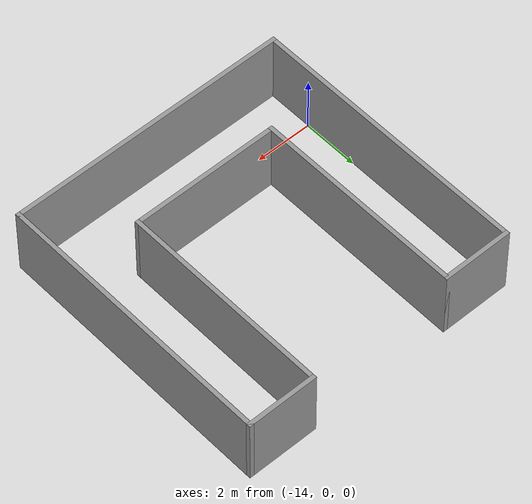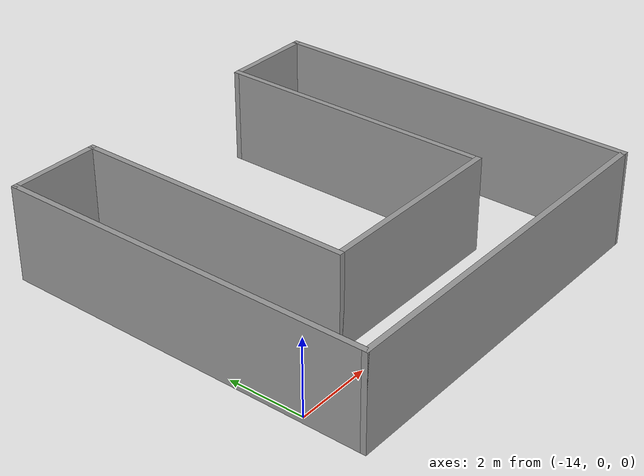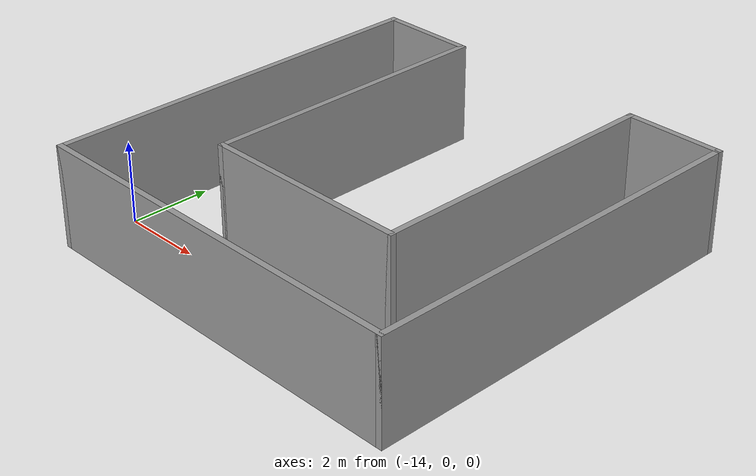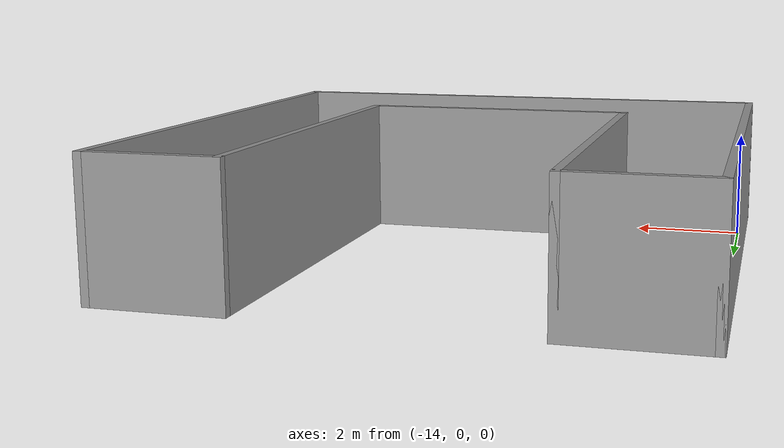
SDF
<?xml version='1.0'?>
<sdf version='1.7'>
  <model name='mybuilding'>
    <pose>-7.0795 3.279 0 0 -0 0</pose>
    <link name='Wall_0'>
      <collision name='Wall_0_Collision'>
        <geometry>
          <box>
            <size>10 0.15 2.5</size>
          </box>
        </geometry>
        <pose>0 0 1.25 0 -0 0</pose>
      </collision>
      <visual name='Wall_0_Visual'>
        <pose>0 0 1.25 0 -0 0</pose>
        <geometry>
          <box>
            <size>10 0.15 2.5</size>
          </box>
        </geometry>
        <material>
          <script>
            <uri>file://media/materials/scripts/gazebo.material</uri>
            <name>Gazebo/Grey</name>
          </script>
          <ambient>1 1 1 1</ambient>
        </material>
        <meta>
          <layer>0</layer>
        </meta>
      </visual>
      <pose>-7.0045 0 0 0 -0 1.5708</pose>
    </link>
    <link name='Wall_10'>
      <collision name='Wall_10_Collision'>
        <geometry>
          <box>
            <size>7.5 0.15 2.5</size>
          </box>
        </geometry>
        <pose>0 0 1.25 0 -0 0</pose>
      </collision>
      <visual name='Wall_10_Visual'>
        <pose>0 0 1.25 0 -0 0</pose>
        <geometry>
          <box>
            <size>7.5 0.15 2.5</size>
          </box>
        </geometry>
        <material>
          <script>
            <uri>file://media/materials/scripts/gazebo.material</uri>
            <name>Gazebo/Grey</name>
          </script>
          <ambient>1 1 1 1</ambient>
        </material>
        <meta>
          <layer>0</layer>
        </meta>
      </visual>
      <pose>-4.6545 1.25 0 0 -0 -1.5708</pose>
    </link>
    <link name='Wall_13'>
      <collision name='Wall_13_Collision'>
        <geometry>
          <box>
            <size>7.5 0.15 2.5</size>
          </box>
        </geometry>
        <pose>0 0 1.25 0 -0 0</pose>
      </collision>
      <visual name='Wall_13_Visual'>
        <pose>0 0 1.25 0 -0 0</pose>
        <geometry>
          <box>
            <size>7.5 0.15 2.5</size>
          </box>
        </geometry>
        <material>
          <script>
            <uri>file://media/materials/scripts/gazebo.material</uri>
            <name>Gazebo/Grey</name>
          </script>
          <ambient>1 1 1 1</ambient>
        </material>
        <meta>
          <layer>0</layer>
        </meta>
      </visual>
      <pose>0.4955 1.25 0 0 -0 -1.5708</pose>
    </link>
    <link name='Wall_15'>
      <collision name='Wall_15_Collision'>
        <geometry>
          <box>
            <size>5.3 0.15 2.5</size>
          </box>
        </geometry>
        <pose>0 0 1.25 0 -0 0</pose>
      </collision>
      <visual name='Wall_15_Visual'>
        <pose>0 0 1.25 0 -0 0</pose>
        <geometry>
          <box>
            <size>5.3 0.15 2.5</size>
          </box>
        </geometry>
        <material>
          <script>
            <uri>file://media/materials/scripts/gazebo.material</uri>
            <name>Gazebo/Grey</name>
          </script>
          <ambient>1 1 1 1</ambient>
        </material>
        <meta>
          <layer>0</layer>
        </meta>
      </visual>
      <pose>-2.0795 -2.425 0 0 -0 0</pose>
    </link>
    <link name='Wall_2'>
      <collision name='Wall_2_Collision'>
        <geometry>
          <box>
            <size>2.5 0.15 2.5</size>
          </box>
        </geometry>
        <pose>0 0 1.25 0 -0 0</pose>
      </collision>
      <visual name='Wall_2_Visual'>
        <pose>0 0 1.25 0 -0 0</pose>
        <geometry>
          <box>
            <size>2.5 0.15 2.5</size>
          </box>
        </geometry>
        <material>
          <script>
            <uri>file://media/materials/scripts/gazebo.material</uri>
            <name>Gazebo/Grey</name>
          </script>
          <ambient>1 1 1 1</ambient>
        </material>
        <meta>
          <layer>0</layer>
        </meta>
      </visual>
      <pose>-5.8295 4.925 0 0 -0 0</pose>
    </link>
    <link name='Wall_4'>
      <collision name='Wall_4_Collision'>
        <geometry>
          <box>
            <size>10 0.15 2.5</size>
          </box>
        </geometry>
        <pose>0 0 1.25 0 -0 0</pose>
      </collision>
      <visual name='Wall_4_Visual'>
        <pose>0 0 1.25 0 -0 0</pose>
        <geometry>
          <box>
            <size>10 0.15 2.5</size>
          </box>
        </geometry>
        <material>
          <script>
            <uri>file://media/materials/scripts/gazebo.material</uri>
            <name>Gazebo/Grey</name>
          </script>
          <ambient>1 1 1 1</ambient>
        </material>
        <meta>
          <layer>0</layer>
        </meta>
      </visual>
      <pose>-2.0795 -4.925 0 0 -0 0</pose>
    </link>
    <link name='Wall_6'>
      <collision name='Wall_6_Collision'>
        <geometry>
          <box>
            <size>10 0.15 2.5</size>
          </box>
        </geometry>
        <pose>0 0 1.25 0 -0 0</pose>
      </collision>
      <visual name='Wall_6_Visual'>
        <pose>0 0 1.25 0 -0 0</pose>
        <geometry>
          <box>
            <size>10 0.15 2.5</size>
          </box>
        </geometry>
        <material>
          <script>
            <uri>file://media/materials/scripts/gazebo.material</uri>
            <name>Gazebo/Grey</name>
          </script>
          <ambient>1 1 1 1</ambient>
        </material>
        <meta>
          <layer>0</layer>
        </meta>
      </visual>
      <pose>2.8455 0 0 0 -0 1.5708</pose>
    </link>
    <link name='Wall_8'>
      <collision name='Wall_8_Collision'>
        <geometry>
          <box>
            <size>2.5 0.15 2.5</size>
          </box>
        </geometry>
        <pose>0 0 1.25 0 -0 0</pose>
      </collision>
      <visual name='Wall_8_Visual'>
        <pose>0 0 1.25 0 -0 0</pose>
        <geometry>
          <box>
            <size>2.5 0.15 2.5</size>
          </box>
        </geometry>
        <material>
          <script>
            <uri>file://media/materials/scripts/gazebo.material</uri>
            <name>Gazebo/Grey</name>
          </script>
          <ambient>1 1 1 1</ambient>
        </material>
        <meta>
          <layer>0</layer>
        </meta>
      </visual>
      <pose>1.6705 4.925 0 0 -0 3.14159</pose>
    </link>
    <static>1</static>
  </model>
</sdf>
